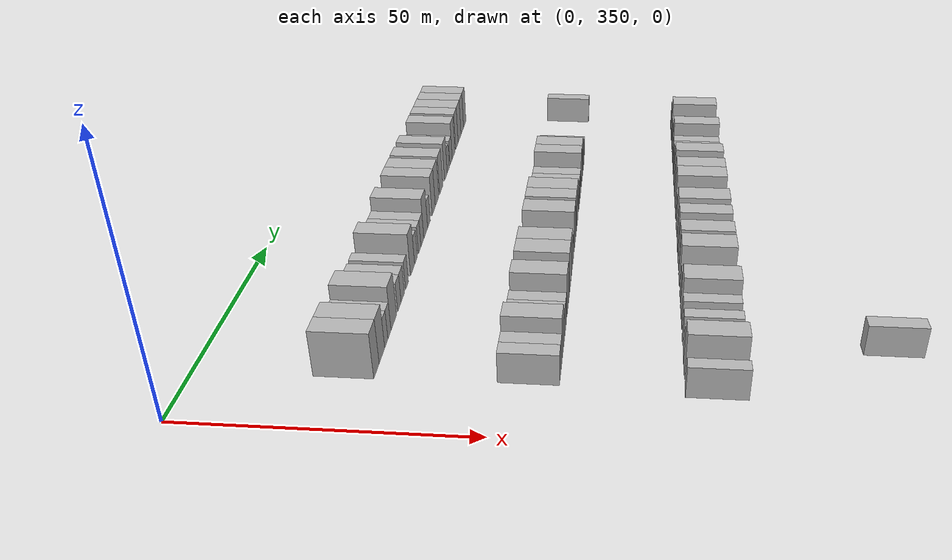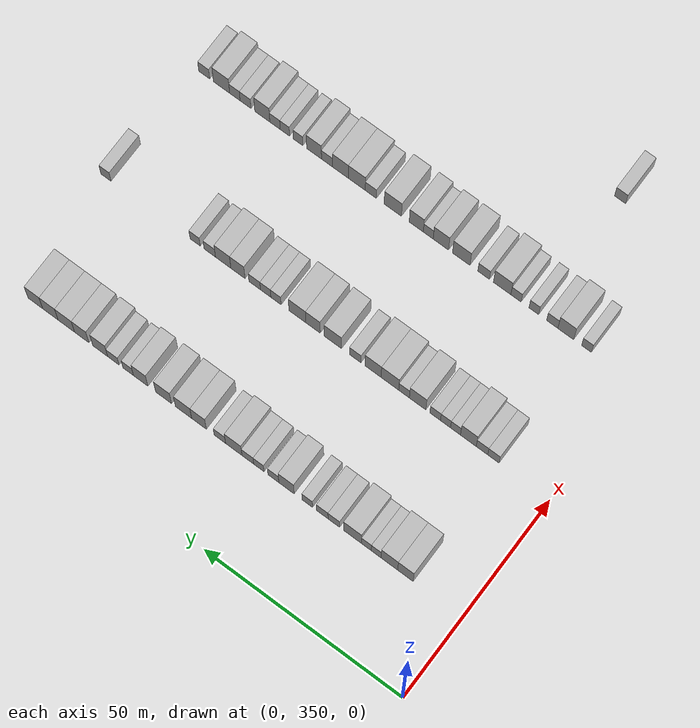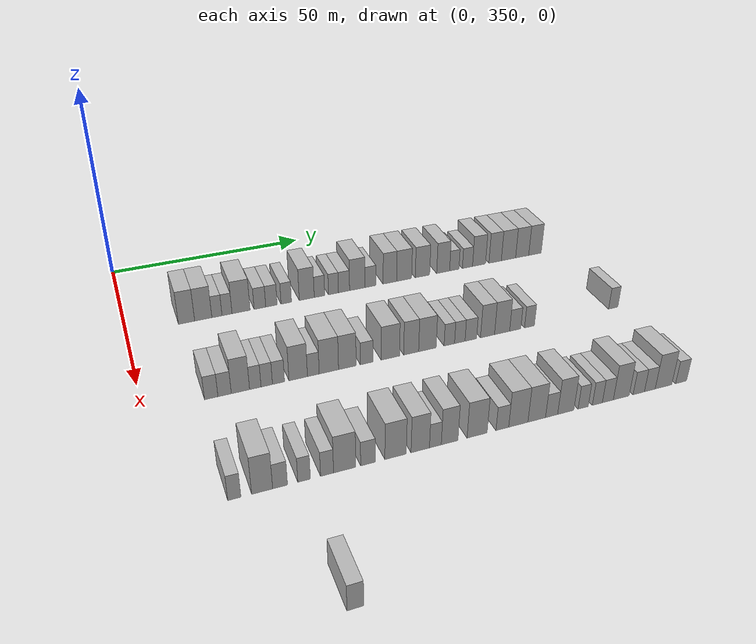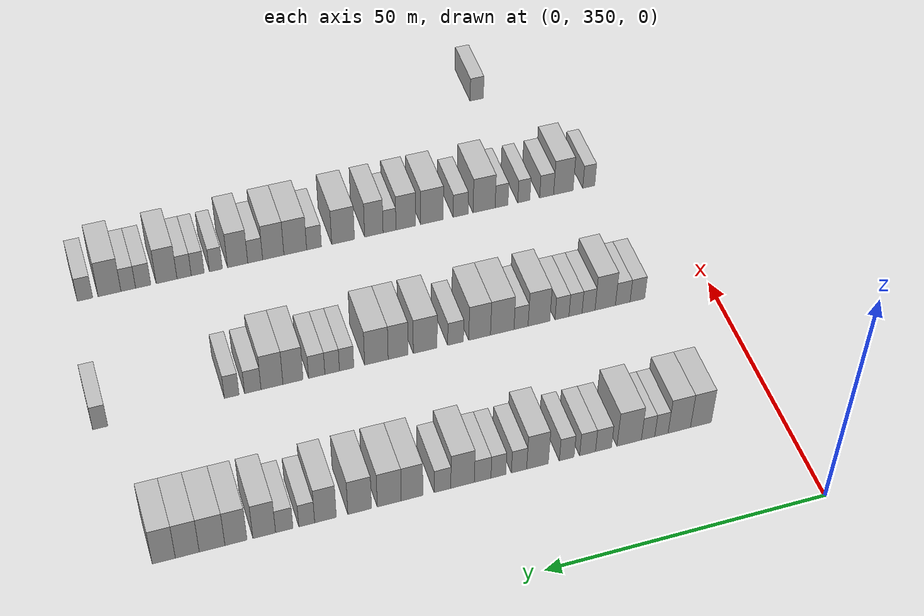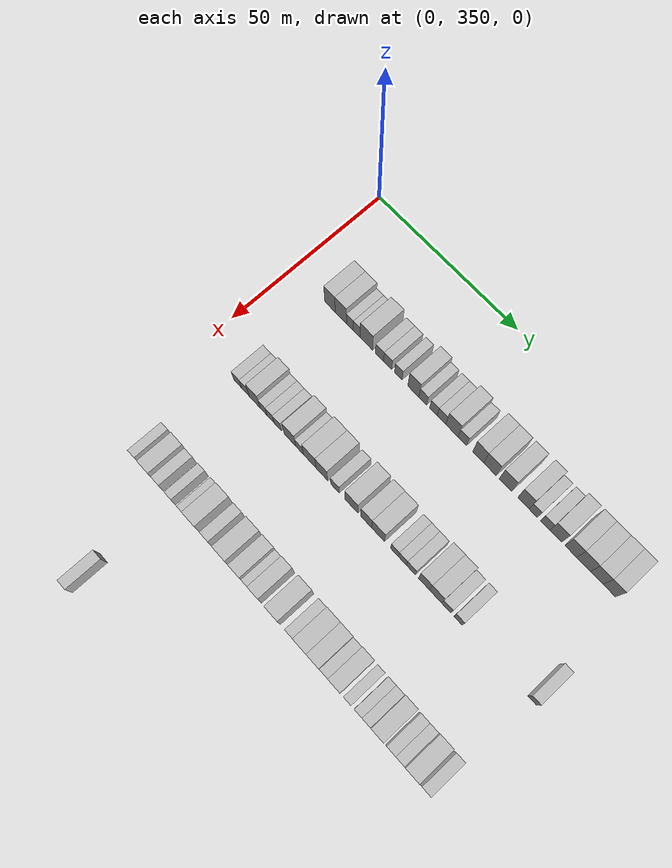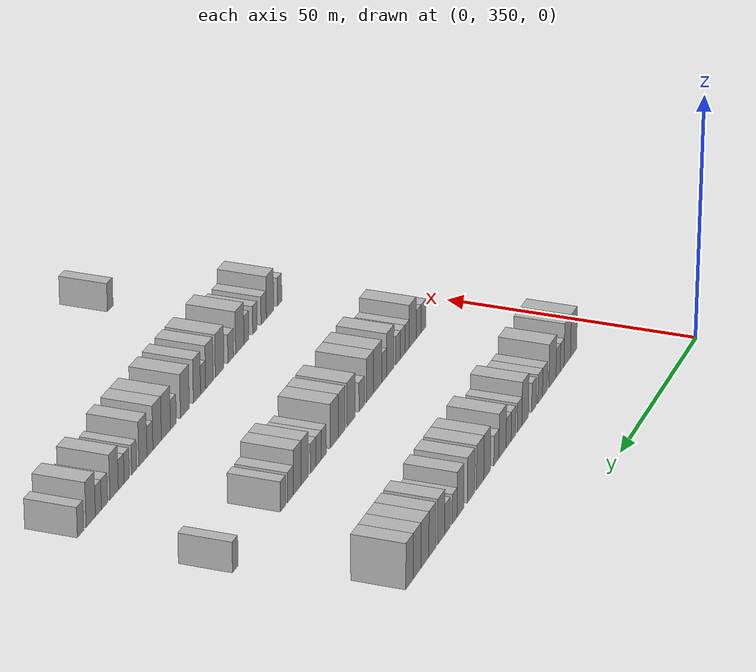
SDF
<sdf version="1.6">
 <world name="default">
  <model name="building_183">
   <static>1</static>
   <pose>25.0000 364.2262 0 0.000000 0.000000 0.000000</pose>
   <link name="link">
    <pose>0 0 4.50 0 0 0</pose>
    <collision name="collision"><geometry><box><size>10.0000 3.8904 9.0000</size></box></geometry></collision>
    <visual name="visual">
     <cast_shadows>0</cast_shadows>
     <geometry><box><size>10.0000 3.8904 9.0000</size></box></geometry>
     <material>
      <script>
       <uri>model://HANNAS_wall/materials/scripts</uri>
       <uri>model://HANNAS_wall/materials/textures</uri>
       <name>vrc/HANNAS_wall</name>
      </script>
     </material>
    </visual>
   </link>
  </model>
  <model name="building_184">
   <static>1</static>
   <pose>25.0000 368.2516 0 0.000000 0.000000 0.000000</pose>
   <link name="link">
    <pose>0 0 4.50 0 0 0</pose>
    <collision name="collision"><geometry><box><size>10.0000 4.1603 9.0000</size></box></geometry></collision>
    <visual name="visual">
     <cast_shadows>0</cast_shadows>
     <geometry><box><size>10.0000 4.1603 9.0000</size></box></geometry>
     <material>
      <script>
       <uri>model://HANNAS_wall/materials/scripts</uri>
       <uri>model://HANNAS_wall/materials/textures</uri>
       <name>vrc/HANNAS_wall</name>
      </script>
     </material>
    </visual>
   </link>
  </model>
  <model name="building_185">
   <static>1</static>
   <pose>25.0000 371.5665 0 0.000000 0.000000 0.000000</pose>
   <link name="link">
    <pose>0 0 3.00 0 0 0</pose>
    <collision name="collision"><geometry><box><size>10.0000 2.4695 6.0000</size></box></geometry></collision>
    <visual name="visual">
     <cast_shadows>0</cast_shadows>
     <geometry><box><size>10.0000 2.4695 6.0000</size></box></geometry>
     <material>
      <script>
       <uri>model://HANNAS_wall/materials/scripts</uri>
       <uri>model://HANNAS_wall/materials/textures</uri>
       <name>vrc/HANNAS_wall</name>
      </script>
     </material>
    </visual>
   </link>
  </model>
  <model name="building_186">
   <static>1</static>
   <pose>25.0000 374.0352 0 0.000000 0.000000 0.000000</pose>
   <link name="link">
    <pose>0 0 3.00 0 0 0</pose>
    <collision name="collision"><geometry><box><size>10.0000 2.4679 6.0000</size></box></geometry></collision>
    <visual name="visual">
     <cast_shadows>0</cast_shadows>
     <geometry><box><size>10.0000 2.4679 6.0000</size></box></geometry>
     <material>
      <script>
       <uri>model://HANNAS_wall/materials/scripts</uri>
       <uri>model://HANNAS_wall/materials/textures</uri>
       <name>vrc/HANNAS_wall</name>
      </script>
     </material>
    </visual>
   </link>
  </model>
  <model name="building_187">
   <static>1</static>
   <pose>25.0000 377.5151 0 0.000000 0.000000 0.000000</pose>
   <link name="link">
    <pose>0 0 4.50 0 0 0</pose>
    <collision name="collision"><geometry><box><size>10.0000 4.4919 9.0000</size></box></geometry></collision>
    <visual name="visual">
     <cast_shadows>0</cast_shadows>
     <geometry><box><size>10.0000 4.4919 9.0000</size></box></geometry>
     <material>
      <script>
       <uri>model://HANNAS_wall/materials/scripts</uri>
       <uri>model://HANNAS_wall/materials/textures</uri>
       <name>vrc/HANNAS_wall</name>
      </script>
     </material>
    </visual>
   </link>
  </model>
  <model name="building_188">
   <static>1</static>
   <pose>25.0000 382.2272 0 0.000000 0.000000 0.000000</pose>
   <link name="link">
    <pose>0 0 3.00 0 0 0</pose>
    <collision name="collision"><geometry><box><size>10.0000 2.9324 6.0000</size></box></geometry></collision>
    <visual name="visual">
     <cast_shadows>0</cast_shadows>
     <geometry><box><size>10.0000 2.9324 6.0000</size></box></geometry>
     <material>
      <script>
       <uri>model://HANNAS_wall/materials/scripts</uri>
       <uri>model://HANNAS_wall/materials/textures</uri>
       <name>vrc/HANNAS_wall</name>
      </script>
     </material>
    </visual>
   </link>
  </model>
  <model name="building_189">
   <static>1</static>
   <pose>25.0000 385.1375 0 0.000000 0.000000 0.000000</pose>
   <link name="link">
    <pose>0 0 3.00 0 0 0</pose>
    <collision name="collision"><geometry><box><size>10.0000 2.8883 6.0000</size></box></geometry></collision>
    <visual name="visual">
     <cast_shadows>0</cast_shadows>
     <geometry><box><size>10.0000 2.8883 6.0000</size></box></geometry>
     <material>
      <script>
       <uri>model://HANNAS_wall/materials/scripts</uri>
       <uri>model://HANNAS_wall/materials/textures</uri>
       <name>vrc/HANNAS_wall</name>
      </script>
     </material>
    </visual>
   </link>
  </model>
  <model name="building_190">
   <static>1</static>
   <pose>25.0000 388.9206 0 0.000000 0.000000 0.000000</pose>
   <link name="link">
    <pose>0 0 3.00 0 0 0</pose>
    <collision name="collision"><geometry><box><size>10.0000 2.6778 6.0000</size></box></geometry></collision>
    <visual name="visual">
     <cast_shadows>0</cast_shadows>
     <geometry><box><size>10.0000 2.6778 6.0000</size></box></geometry>
     <material>
      <script>
       <uri>model://HANNAS_wall/materials/scripts</uri>
       <uri>model://HANNAS_wall/materials/textures</uri>
       <name>vrc/HANNAS_wall</name>
      </script>
     </material>
    </visual>
   </link>
  </model>
  <model name="building_191">
   <static>1</static>
   <pose>25.0000 394.2094 0 0.000000 0.000000 0.000000</pose>
   <link name="link">
    <pose>0 0 4.50 0 0 0</pose>
    <collision name="collision"><geometry><box><size>10.0000 3.8999 9.0000</size></box></geometry></collision>
    <visual name="visual">
     <cast_shadows>0</cast_shadows>
     <geometry><box><size>10.0000 3.8999 9.0000</size></box></geometry>
     <material>
      <script>
       <uri>model://HANNAS_wall/materials/scripts</uri>
       <uri>model://HANNAS_wall/materials/textures</uri>
       <name>vrc/HANNAS_wall</name>
      </script>
     </material>
    </visual>
   </link>
  </model>
  <model name="building_192">
   <static>1</static>
   <pose>25.0000 397.5277 0 0.000000 0.000000 0.000000</pose>
   <link name="link">
    <pose>0 0 3.00 0 0 0</pose>
    <collision name="collision"><geometry><box><size>10.0000 2.7368 6.0000</size></box></geometry></collision>
    <visual name="visual">
     <cast_shadows>0</cast_shadows>
     <geometry><box><size>10.0000 2.7368 6.0000</size></box></geometry>
     <material>
      <script>
       <uri>model://HANNAS_wall/materials/scripts</uri>
       <uri>model://HANNAS_wall/materials/textures</uri>
       <name>vrc/HANNAS_wall</name>
      </script>
     </material>
    </visual>
   </link>
  </model>
  <model name="building_193">
   <static>1</static>
   <pose>25.0000 401.2168 0 0.000000 0.000000 0.000000</pose>
   <link name="link">
    <pose>0 0 3.00 0 0 0</pose>
    <collision name="collision"><geometry><box><size>10.0000 2.6414 6.0000</size></box></geometry></collision>
    <visual name="visual">
     <cast_shadows>0</cast_shadows>
     <geometry><box><size>10.0000 2.6414 6.0000</size></box></geometry>
     <material>
      <script>
       <uri>model://HANNAS_wall/materials/scripts</uri>
       <uri>model://HANNAS_wall/materials/textures</uri>
       <name>vrc/HANNAS_wall</name>
      </script>
     </material>
    </visual>
   </link>
  </model>
  <model name="building_194">
   <static>1</static>
   <pose>25.0000 404.0243 0 0.000000 0.000000 0.000000</pose>
   <link name="link">
    <pose>0 0 3.00 0 0 0</pose>
    <collision name="collision"><geometry><box><size>10.0000 2.9736 6.0000</size></box></geometry></collision>
    <visual name="visual">
     <cast_shadows>0</cast_shadows>
     <geometry><box><size>10.0000 2.9736 6.0000</size></box></geometry>
     <material>
      <script>
       <uri>model://HANNAS_wall/materials/scripts</uri>
       <uri>model://HANNAS_wall/materials/textures</uri>
       <name>vrc/HANNAS_wall</name>
      </script>
     </material>
    </visual>
   </link>
  </model>
  <model name="building_195">
   <static>1</static>
   <pose>25.0000 407.5919 0 0.000000 0.000000 0.000000</pose>
   <link name="link">
    <pose>0 0 4.50 0 0 0</pose>
    <collision name="collision"><geometry><box><size>10.0000 4.1615 9.0000</size></box></geometry></collision>
    <visual name="visual">
     <cast_shadows>0</cast_shadows>
     <geometry><box><size>10.0000 4.1615 9.0000</size></box></geometry>
     <material>
      <script>
       <uri>model://HANNAS_wall/materials/scripts</uri>
       <uri>model://HANNAS_wall/materials/textures</uri>
       <name>vrc/HANNAS_wall</name>
      </script>
     </material>
    </visual>
   </link>
  </model>
  <model name="building_196">
   <static>1</static>
   <pose>25.0000 411.1399 0 0.000000 0.000000 0.000000</pose>
   <link name="link">
    <pose>0 0 3.00 0 0 0</pose>
    <collision name="collision"><geometry><box><size>10.0000 2.9345 6.0000</size></box></geometry></collision>
    <visual name="visual">
     <cast_shadows>0</cast_shadows>
     <geometry><box><size>10.0000 2.9345 6.0000</size></box></geometry>
     <material>
      <script>
       <uri>model://HANNAS_wall/materials/scripts</uri>
       <uri>model://HANNAS_wall/materials/textures</uri>
       <name>vrc/HANNAS_wall</name>
      </script>
     </material>
    </visual>
   </link>
  </model>
  <model name="building_197">
   <static>1</static>
   <pose>25.0000 416.4873 0 0.000000 0.000000 0.000000</pose>
   <link name="link">
    <pose>0 0 4.50 0 0 0</pose>
    <collision name="collision"><geometry><box><size>10.0000 3.7602 9.0000</size></box></geometry></collision>
    <visual name="visual">
     <cast_shadows>0</cast_shadows>
     <geometry><box><size>10.0000 3.7602 9.0000</size></box></geometry>
     <material>
      <script>
       <uri>model://HANNAS_wall/materials/scripts</uri>
       <uri>model://HANNAS_wall/materials/textures</uri>
       <name>vrc/HANNAS_wall</name>
      </script>
     </material>
    </visual>
   </link>
  </model>
  <model name="building_198">
   <static>1</static>
   <pose>25.0000 420.4579 0 0.000000 0.000000 0.000000</pose>
   <link name="link">
    <pose>0 0 4.50 0 0 0</pose>
    <collision name="collision"><geometry><box><size>10.0000 4.1810 9.0000</size></box></geometry></collision>
    <visual name="visual">
     <cast_shadows>0</cast_shadows>
     <geometry><box><size>10.0000 4.1810 9.0000</size></box></geometry>
     <material>
      <script>
       <uri>model://HANNAS_wall/materials/scripts</uri>
       <uri>model://HANNAS_wall/materials/textures</uri>
       <name>vrc/HANNAS_wall</name>
      </script>
     </material>
    </visual>
   </link>
  </model>
  <model name="building_199">
   <static>1</static>
   <pose>25.0000 425.5922 0 0.000000 0.000000 0.000000</pose>
   <link name="link">
    <pose>0 0 4.50 0 0 0</pose>
    <collision name="collision"><geometry><box><size>10.0000 4.0876 9.0000</size></box></geometry></collision>
    <visual name="visual">
     <cast_shadows>0</cast_shadows>
     <geometry><box><size>10.0000 4.0876 9.0000</size></box></geometry>
     <material>
      <script>
       <uri>model://HANNAS_wall/materials/scripts</uri>
       <uri>model://HANNAS_wall/materials/textures</uri>
       <name>vrc/HANNAS_wall</name>
      </script>
     </material>
    </visual>
   </link>
  </model>
  <model name="building_200">
   <static>1</static>
   <pose>25.0000 431.4928 0 0.000000 0.000000 0.000000</pose>
   <link name="link">
    <pose>0 0 4.50 0 0 0</pose>
    <collision name="collision"><geometry><box><size>10.0000 3.7136 9.0000</size></box></geometry></collision>
    <visual name="visual">
     <cast_shadows>0</cast_shadows>
     <geometry><box><size>10.0000 3.7136 9.0000</size></box></geometry>
     <material>
      <script>
       <uri>model://HANNAS_wall/materials/scripts</uri>
       <uri>model://HANNAS_wall/materials/textures</uri>
       <name>vrc/HANNAS_wall</name>
      </script>
     </material>
    </visual>
   </link>
  </model>
  <model name="building_201">
   <static>1</static>
   <pose>25.0000 434.7051 0 0.000000 0.000000 0.000000</pose>
   <link name="link">
    <pose>0 0 3.00 0 0 0</pose>
    <collision name="collision"><geometry><box><size>10.0000 2.7110 6.0000</size></box></geometry></collision>
    <visual name="visual">
     <cast_shadows>0</cast_shadows>
     <geometry><box><size>10.0000 2.7110 6.0000</size></box></geometry>
     <material>
      <script>
       <uri>model://HANNAS_wall/materials/scripts</uri>
       <uri>model://HANNAS_wall/materials/textures</uri>
       <name>vrc/HANNAS_wall</name>
      </script>
     </material>
    </visual>
   </link>
  </model>
  <model name="building_202">
   <static>1</static>
   <pose>25.0000 438.5434 0 0.000000 0.000000 0.000000</pose>
   <link name="link">
    <pose>0 0 3.00 0 0 0</pose>
    <collision name="collision"><geometry><box><size>10.0000 2.9657 6.0000</size></box></geometry></collision>
    <visual name="visual">
     <cast_shadows>0</cast_shadows>
     <geometry><box><size>10.0000 2.9657 6.0000</size></box></geometry>
     <material>
      <script>
       <uri>model://HANNAS_wall/materials/scripts</uri>
       <uri>model://HANNAS_wall/materials/textures</uri>
       <name>vrc/HANNAS_wall</name>
      </script>
     </material>
    </visual>
   </link>
  </model>
  <model name="building_203">
   <static>1</static>
   <pose>25.0000 441.9477 0 0.000000 0.000000 0.000000</pose>
   <link name="link">
    <pose>0 0 4.50 0 0 0</pose>
    <collision name="collision"><geometry><box><size>10.0000 3.8429 9.0000</size></box></geometry></collision>
    <visual name="visual">
     <cast_shadows>0</cast_shadows>
     <geometry><box><size>10.0000 3.8429 9.0000</size></box></geometry>
     <material>
      <script>
       <uri>model://HANNAS_wall/materials/scripts</uri>
       <uri>model://HANNAS_wall/materials/textures</uri>
       <name>vrc/HANNAS_wall</name>
      </script>
     </material>
    </visual>
   </link>
  </model>
  <model name="building_204">
   <static>1</static>
   <pose>25.0000 446.7280 0 0.000000 0.000000 0.000000</pose>
   <link name="link">
    <pose>0 0 4.50 0 0 0</pose>
    <collision name="collision"><geometry><box><size>10.0000 3.7176 9.0000</size></box></geometry></collision>
    <visual name="visual">
     <cast_shadows>0</cast_shadows>
     <geometry><box><size>10.0000 3.7176 9.0000</size></box></geometry>
     <material>
      <script>
       <uri>model://HANNAS_wall/materials/scripts</uri>
       <uri>model://HANNAS_wall/materials/textures</uri>
       <name>vrc/HANNAS_wall</name>
      </script>
     </material>
    </visual>
   </link>
  </model>
  <model name="building_205">
   <static>1</static>
   <pose>25.0000 450.7394 0 0.000000 0.000000 0.000000</pose>
   <link name="link">
    <pose>0 0 4.50 0 0 0</pose>
    <collision name="collision"><geometry><box><size>10.0000 4.3052 9.0000</size></box></geometry></collision>
    <visual name="visual">
     <cast_shadows>0</cast_shadows>
     <geometry><box><size>10.0000 4.3052 9.0000</size></box></geometry>
     <material>
      <script>
       <uri>model://HANNAS_wall/materials/scripts</uri>
       <uri>model://HANNAS_wall/materials/textures</uri>
       <name>vrc/HANNAS_wall</name>
      </script>
     </material>
    </visual>
   </link>
  </model>
  <model name="building_206">
   <static>1</static>
   <pose>25.0000 454.8873 0 0.000000 0.000000 0.000000</pose>
   <link name="link">
    <pose>0 0 4.50 0 0 0</pose>
    <collision name="collision"><geometry><box><size>10.0000 3.9905 9.0000</size></box></geometry></collision>
    <visual name="visual">
     <cast_shadows>0</cast_shadows>
     <geometry><box><size>10.0000 3.9905 9.0000</size></box></geometry>
     <material>
      <script>
       <uri>model://HANNAS_wall/materials/scripts</uri>
       <uri>model://HANNAS_wall/materials/textures</uri>
       <name>vrc/HANNAS_wall</name>
      </script>
     </material>
    </visual>
   </link>
  </model>
  <model name="building_207">
   <static>1</static>
   <pose>25.0000 458.8040 0 0.000000 0.000000 0.000000</pose>
   <link name="link">
    <pose>0 0 4.50 0 0 0</pose>
    <collision name="collision"><geometry><box><size>10.0000 3.8428 9.0000</size></box></geometry></collision>
    <visual name="visual">
     <cast_shadows>0</cast_shadows>
     <geometry><box><size>10.0000 3.8428 9.0000</size></box></geometry>
     <material>
      <script>
       <uri>model://HANNAS_wall/materials/scripts</uri>
       <uri>model://HANNAS_wall/materials/textures</uri>
       <name>vrc/HANNAS_wall</name>
      </script>
     </material>
    </visual>
   </link>
  </model>
  <model name="building_411">
   <static>1</static>
   <pose>55.0000 364.2267 0 0.000000 0.000000 0.000000</pose>
   <link name="link">
    <pose>0 0 3.00 0 0 0</pose>
    <collision name="collision"><geometry><box><size>10.0000 2.8691 6.0000</size></box></geometry></collision>
    <visual name="visual">
     <cast_shadows>0</cast_shadows>
     <geometry><box><size>10.0000 2.8691 6.0000</size></box></geometry>
     <material>
      <script>
       <uri>model://HANNAS_wall/materials/scripts</uri>
       <uri>model://HANNAS_wall/materials/textures</uri>
       <name>vrc/HANNAS_wall</name>
      </script>
     </material>
    </visual>
   </link>
  </model>
  <model name="building_412">
   <static>1</static>
   <pose>55.0000 367.0992 0 0.000000 0.000000 0.000000</pose>
   <link name="link">
    <pose>0 0 3.00 0 0 0</pose>
    <collision name="collision"><geometry><box><size>10.0000 2.8759 6.0000</size></box></geometry></collision>
    <visual name="visual">
     <cast_shadows>0</cast_shadows>
     <geometry><box><size>10.0000 2.8759 6.0000</size></box></geometry>
     <material>
      <script>
       <uri>model://HANNAS_wall/materials/scripts</uri>
       <uri>model://HANNAS_wall/materials/textures</uri>
       <name>vrc/HANNAS_wall</name>
      </script>
     </material>
    </visual>
   </link>
  </model>
  <model name="building_413">
   <static>1</static>
   <pose>55.0000 370.5281 0 0.000000 0.000000 0.000000</pose>
   <link name="link">
    <pose>0 0 4.50 0 0 0</pose>
    <collision name="collision"><geometry><box><size>10.0000 3.9819 9.0000</size></box></geometry></collision>
    <visual name="visual">
     <cast_shadows>0</cast_shadows>
     <geometry><box><size>10.0000 3.9819 9.0000</size></box></geometry>
     <material>
      <script>
       <uri>model://HANNAS_wall/materials/scripts</uri>
       <uri>model://HANNAS_wall/materials/textures</uri>
       <name>vrc/HANNAS_wall</name>
      </script>
     </material>
    </visual>
   </link>
  </model>
  <model name="building_414">
   <static>1</static>
   <pose>55.0000 373.7792 0 0.000000 0.000000 0.000000</pose>
   <link name="link">
    <pose>0 0 3.00 0 0 0</pose>
    <collision name="collision"><geometry><box><size>10.0000 2.5201 6.0000</size></box></geometry></collision>
    <visual name="visual">
     <cast_shadows>0</cast_shadows>
     <geometry><box><size>10.0000 2.5201 6.0000</size></box></geometry>
     <material>
      <script>
       <uri>model://HANNAS_wall/materials/scripts</uri>
       <uri>model://HANNAS_wall/materials/textures</uri>
       <name>vrc/HANNAS_wall</name>
      </script>
     </material>
    </visual>
   </link>
  </model>
  <model name="building_415">
   <static>1</static>
   <pose>55.0000 376.3040 0 0.000000 0.000000 0.000000</pose>
   <link name="link">
    <pose>0 0 3.00 0 0 0</pose>
    <collision name="collision"><geometry><box><size>10.0000 2.5296 6.0000</size></box></geometry></collision>
    <visual name="visual">
     <cast_shadows>0</cast_shadows>
     <geometry><box><size>10.0000 2.5296 6.0000</size></box></geometry>
     <material>
      <script>
       <uri>model://HANNAS_wall/materials/scripts</uri>
       <uri>model://HANNAS_wall/materials/textures</uri>
       <name>vrc/HANNAS_wall</name>
      </script>
     </material>
    </visual>
   </link>
  </model>
  <model name="building_416">
   <static>1</static>
   <pose>55.0000 378.9196 0 0.000000 0.000000 0.000000</pose>
   <link name="link">
    <pose>0 0 3.00 0 0 0</pose>
    <collision name="collision"><geometry><box><size>10.0000 2.7015 6.0000</size></box></geometry></collision>
    <visual name="visual">
     <cast_shadows>0</cast_shadows>
     <geometry><box><size>10.0000 2.7015 6.0000</size></box></geometry>
     <material>
      <script>
       <uri>model://HANNAS_wall/materials/scripts</uri>
       <uri>model://HANNAS_wall/materials/textures</uri>
       <name>vrc/HANNAS_wall</name>
      </script>
     </material>
    </visual>
   </link>
  </model>
  <model name="building_417">
   <static>1</static>
   <pose>55.0000 383.3607 0 0.000000 0.000000 0.000000</pose>
   <link name="link">
    <pose>0 0 4.50 0 0 0</pose>
    <collision name="collision"><geometry><box><size>10.0000 4.1807 9.0000</size></box></geometry></collision>
    <visual name="visual">
     <cast_shadows>0</cast_shadows>
     <geometry><box><size>10.0000 4.1807 9.0000</size></box></geometry>
     <material>
      <script>
       <uri>model://HANNAS_wall/materials/scripts</uri>
       <uri>model://HANNAS_wall/materials/textures</uri>
       <name>vrc/HANNAS_wall</name>
      </script>
     </material>
    </visual>
   </link>
  </model>
  <model name="building_418">
   <static>1</static>
   <pose>55.0000 386.8010 0 0.000000 0.000000 0.000000</pose>
   <link name="link">
    <pose>0 0 3.00 0 0 0</pose>
    <collision name="collision"><geometry><box><size>10.0000 2.6998 6.0000</size></box></geometry></collision>
    <visual name="visual">
     <cast_shadows>0</cast_shadows>
     <geometry><box><size>10.0000 2.6998 6.0000</size></box></geometry>
     <material>
      <script>
       <uri>model://HANNAS_wall/materials/scripts</uri>
       <uri>model://HANNAS_wall/materials/textures</uri>
       <name>vrc/HANNAS_wall</name>
      </script>
     </material>
    </visual>
   </link>
  </model>
  <model name="building_419">
   <static>1</static>
   <pose>55.0000 390.3885 0 0.000000 0.000000 0.000000</pose>
   <link name="link">
    <pose>0 0 4.50 0 0 0</pose>
    <collision name="collision"><geometry><box><size>10.0000 4.4751 9.0000</size></box></geometry></collision>
    <visual name="visual">
     <cast_shadows>0</cast_shadows>
     <geometry><box><size>10.0000 4.4751 9.0000</size></box></geometry>
     <material>
      <script>
       <uri>model://HANNAS_wall/materials/scripts</uri>
       <uri>model://HANNAS_wall/materials/textures</uri>
       <name>vrc/HANNAS_wall</name>
      </script>
     </material>
    </visual>
   </link>
  </model>
  <model name="building_420">
   <static>1</static>
   <pose>55.0000 394.6880 0 0.000000 0.000000 0.000000</pose>
   <link name="link">
    <pose>0 0 4.50 0 0 0</pose>
    <collision name="collision"><geometry><box><size>10.0000 4.1240 9.0000</size></box></geometry></collision>
    <visual name="visual">
     <cast_shadows>0</cast_shadows>
     <geometry><box><size>10.0000 4.1240 9.0000</size></box></geometry>
     <material>
      <script>
       <uri>model://HANNAS_wall/materials/scripts</uri>
       <uri>model://HANNAS_wall/materials/textures</uri>
       <name>vrc/HANNAS_wall</name>
      </script>
     </material>
    </visual>
   </link>
  </model>
  <model name="building_421">
   <static>1</static>
   <pose>55.0000 399.2357 0 0.000000 0.000000 0.000000</pose>
   <link name="link">
    <pose>0 0 3.00 0 0 0</pose>
    <collision name="collision"><geometry><box><size>10.0000 2.9714 6.0000</size></box></geometry></collision>
    <visual name="visual">
     <cast_shadows>0</cast_shadows>
     <geometry><box><size>10.0000 2.9714 6.0000</size></box></geometry>
     <material>
      <script>
       <uri>model://HANNAS_wall/materials/scripts</uri>
       <uri>model://HANNAS_wall/materials/textures</uri>
       <name>vrc/HANNAS_wall</name>
      </script>
     </material>
    </visual>
   </link>
  </model>
  <model name="building_422">
   <static>1</static>
   <pose>55.0000 404.9467 0 0.000000 0.000000 0.000000</pose>
   <link name="link">
    <pose>0 0 4.50 0 0 0</pose>
    <collision name="collision"><geometry><box><size>10.0000 4.4506 9.0000</size></box></geometry></collision>
    <visual name="visual">
     <cast_shadows>0</cast_shadows>
     <geometry><box><size>10.0000 4.4506 9.0000</size></box></geometry>
     <material>
      <script>
       <uri>model://HANNAS_wall/materials/scripts</uri>
       <uri>model://HANNAS_wall/materials/textures</uri>
       <name>vrc/HANNAS_wall</name>
      </script>
     </material>
    </visual>
   </link>
  </model>
  <model name="building_423">
   <static>1</static>
   <pose>55.0000 410.0169 0 0.000000 0.000000 0.000000</pose>
   <link name="link">
    <pose>0 0 4.50 0 0 0</pose>
    <collision name="collision"><geometry><box><size>10.0000 3.6897 9.0000</size></box></geometry></collision>
    <visual name="visual">
     <cast_shadows>0</cast_shadows>
     <geometry><box><size>10.0000 3.6897 9.0000</size></box></geometry>
     <material>
      <script>
       <uri>model://HANNAS_wall/materials/scripts</uri>
       <uri>model://HANNAS_wall/materials/textures</uri>
       <name>vrc/HANNAS_wall</name>
      </script>
     </material>
    </visual>
   </link>
  </model>
  <model name="building_424">
   <static>1</static>
   <pose>55.0000 414.0390 0 0.000000 0.000000 0.000000</pose>
   <link name="link">
    <pose>0 0 4.50 0 0 0</pose>
    <collision name="collision"><geometry><box><size>10.0000 4.3545 9.0000</size></box></geometry></collision>
    <visual name="visual">
     <cast_shadows>0</cast_shadows>
     <geometry><box><size>10.0000 4.3545 9.0000</size></box></geometry>
     <material>
      <script>
       <uri>model://HANNAS_wall/materials/scripts</uri>
       <uri>model://HANNAS_wall/materials/textures</uri>
       <name>vrc/HANNAS_wall</name>
      </script>
     </material>
    </visual>
   </link>
  </model>
  <model name="building_425">
   <static>1</static>
   <pose>55.0000 419.5422 0 0.000000 0.000000 0.000000</pose>
   <link name="link">
    <pose>0 0 3.00 0 0 0</pose>
    <collision name="collision"><geometry><box><size>10.0000 2.6517 6.0000</size></box></geometry></collision>
    <visual name="visual">
     <cast_shadows>0</cast_shadows>
     <geometry><box><size>10.0000 2.6517 6.0000</size></box></geometry>
     <material>
      <script>
       <uri>model://HANNAS_wall/materials/scripts</uri>
       <uri>model://HANNAS_wall/materials/textures</uri>
       <name>vrc/HANNAS_wall</name>
      </script>
     </material>
    </visual>
   </link>
  </model>
  <model name="building_426">
   <static>1</static>
   <pose>55.0000 422.2078 0 0.000000 0.000000 0.000000</pose>
   <link name="link">
    <pose>0 0 3.00 0 0 0</pose>
    <collision name="collision"><geometry><box><size>10.0000 2.6796 6.0000</size></box></geometry></collision>
    <visual name="visual">
     <cast_shadows>0</cast_shadows>
     <geometry><box><size>10.0000 2.6796 6.0000</size></box></geometry>
     <material>
      <script>
       <uri>model://HANNAS_wall/materials/scripts</uri>
       <uri>model://HANNAS_wall/materials/textures</uri>
       <name>vrc/HANNAS_wall</name>
      </script>
     </material>
    </visual>
   </link>
  </model>
  <model name="building_427">
   <static>1</static>
   <pose>55.0000 425.0359 0 0.000000 0.000000 0.000000</pose>
   <link name="link">
    <pose>0 0 3.00 0 0 0</pose>
    <collision name="collision"><geometry><box><size>10.0000 2.9766 6.0000</size></box></geometry></collision>
    <visual name="visual">
     <cast_shadows>0</cast_shadows>
     <geometry><box><size>10.0000 2.9766 6.0000</size></box></geometry>
     <material>
      <script>
       <uri>model://HANNAS_wall/materials/scripts</uri>
       <uri>model://HANNAS_wall/materials/textures</uri>
       <name>vrc/HANNAS_wall</name>
      </script>
     </material>
    </visual>
   </link>
  </model>
  <model name="building_428">
   <static>1</static>
   <pose>55.0000 429.3567 0 0.000000 0.000000 0.000000</pose>
   <link name="link">
    <pose>0 0 4.50 0 0 0</pose>
    <collision name="collision"><geometry><box><size>10.0000 3.6650 9.0000</size></box></geometry></collision>
    <visual name="visual">
     <cast_shadows>0</cast_shadows>
     <geometry><box><size>10.0000 3.6650 9.0000</size></box></geometry>
     <material>
      <script>
       <uri>model://HANNAS_wall/materials/scripts</uri>
       <uri>model://HANNAS_wall/materials/textures</uri>
       <name>vrc/HANNAS_wall</name>
      </script>
     </material>
    </visual>
   </link>
  </model>
  <model name="building_429">
   <static>1</static>
   <pose>55.0000 433.1728 0 0.000000 0.000000 0.000000</pose>
   <link name="link">
    <pose>0 0 4.50 0 0 0</pose>
    <collision name="collision"><geometry><box><size>10.0000 3.9673 9.0000</size></box></geometry></collision>
    <visual name="visual">
     <cast_shadows>0</cast_shadows>
     <geometry><box><size>10.0000 3.9673 9.0000</size></box></geometry>
     <material>
      <script>
       <uri>model://HANNAS_wall/materials/scripts</uri>
       <uri>model://HANNAS_wall/materials/textures</uri>
       <name>vrc/HANNAS_wall</name>
      </script>
     </material>
    </visual>
   </link>
  </model>
  <model name="building_430">
   <static>1</static>
   <pose>55.0000 436.6396 0 0.000000 0.000000 0.000000</pose>
   <link name="link">
    <pose>0 0 3.00 0 0 0</pose>
    <collision name="collision"><geometry><box><size>10.0000 2.9663 6.0000</size></box></geometry></collision>
    <visual name="visual">
     <cast_shadows>0</cast_shadows>
     <geometry><box><size>10.0000 2.9663 6.0000</size></box></geometry>
     <material>
      <script>
       <uri>model://HANNAS_wall/materials/scripts</uri>
       <uri>model://HANNAS_wall/materials/textures</uri>
       <name>vrc/HANNAS_wall</name>
      </script>
     </material>
    </visual>
   </link>
  </model>
  <model name="building_431">
   <static>1</static>
   <pose>55.0000 440.4459 0 0.000000 0.000000 0.000000</pose>
   <link name="link">
    <pose>0 0 3.00 0 0 0</pose>
    <collision name="collision"><geometry><box><size>10.0000 2.6462 6.0000</size></box></geometry></collision>
    <visual name="visual">
     <cast_shadows>0</cast_shadows>
     <geometry><box><size>10.0000 2.6462 6.0000</size></box></geometry>
     <material>
      <script>
       <uri>model://HANNAS_wall/materials/scripts</uri>
       <uri>model://HANNAS_wall/materials/textures</uri>
       <name>vrc/HANNAS_wall</name>
      </script>
     </material>
    </visual>
   </link>
  </model>
  <model name="building_432">
   <static>1</static>
   <pose>55.0000 463.7493 0 0.000000 0.000000 0.000000</pose>
   <link name="link">
    <pose>0 0 3.00 0 0 0</pose>
    <collision name="collision"><geometry><box><size>10.0000 2.6536 6.0000</size></box></geometry></collision>
    <visual name="visual">
     <cast_shadows>0</cast_shadows>
     <geometry><box><size>10.0000 2.6536 6.0000</size></box></geometry>
     <material>
      <script>
       <uri>model://HANNAS_wall/materials/scripts</uri>
       <uri>model://HANNAS_wall/materials/textures</uri>
       <name>vrc/HANNAS_wall</name>
      </script>
     </material>
    </visual>
   </link>
  </model>
  <model name="building_624">
   <static>1</static>
   <pose>85.0000 362.5491 0 0.000000 0.000000 0.000000</pose>
   <link name="link">
    <pose>0 0 3.00 0 0 0</pose>
    <collision name="collision"><geometry><box><size>10.0000 2.4716 6.0000</size></box></geometry></collision>
    <visual name="visual">
     <cast_shadows>0</cast_shadows>
     <geometry><box><size>10.0000 2.4716 6.0000</size></box></geometry>
     <material>
      <script>
       <uri>model://HANNAS_wall/materials/scripts</uri>
       <uri>model://HANNAS_wall/materials/textures</uri>
       <name>vrc/HANNAS_wall</name>
      </script>
     </material>
    </visual>
   </link>
  </model>
  <model name="building_625">
   <static>1</static>
   <pose>85.0000 367.7833 0 0.000000 0.000000 0.000000</pose>
   <link name="link">
    <pose>0 0 4.50 0 0 0</pose>
    <collision name="collision"><geometry><box><size>10.0000 3.9968 9.0000</size></box></geometry></collision>
    <visual name="visual">
     <cast_shadows>0</cast_shadows>
     <geometry><box><size>10.0000 3.9968 9.0000</size></box></geometry>
     <material>
      <script>
       <uri>model://HANNAS_wall/materials/scripts</uri>
       <uri>model://HANNAS_wall/materials/textures</uri>
       <name>vrc/HANNAS_wall</name>
      </script>
     </material>
    </visual>
   </link>
  </model>
  <model name="building_626">
   <static>1</static>
   <pose>85.0000 371.2113 0 0.000000 0.000000 0.000000</pose>
   <link name="link">
    <pose>0 0 3.00 0 0 0</pose>
    <collision name="collision"><geometry><box><size>10.0000 2.8593 6.0000</size></box></geometry></collision>
    <visual name="visual">
     <cast_shadows>0</cast_shadows>
     <geometry><box><size>10.0000 2.8593 6.0000</size></box></geometry>
     <material>
      <script>
       <uri>model://HANNAS_wall/materials/scripts</uri>
       <uri>model://HANNAS_wall/materials/textures</uri>
       <name>vrc/HANNAS_wall</name>
      </script>
     </material>
    </visual>
   </link>
  </model>
  <model name="building_627">
   <static>1</static>
   <pose>85.0000 375.8689 0 0.000000 0.000000 0.000000</pose>
   <link name="link">
    <pose>0 0 3.00 0 0 0</pose>
    <collision name="collision"><geometry><box><size>10.0000 2.4560 6.0000</size></box></geometry></collision>
    <visual name="visual">
     <cast_shadows>0</cast_shadows>
     <geometry><box><size>10.0000 2.4560 6.0000</size></box></geometry>
     <material>
      <script>
       <uri>model://HANNAS_wall/materials/scripts</uri>
       <uri>model://HANNAS_wall/materials/textures</uri>
       <name>vrc/HANNAS_wall</name>
      </script>
     </material>
    </visual>
   </link>
  </model>
  <model name="building_628">
   <static>1</static>
   <pose>85.0000 380.3938 0 0.000000 0.000000 0.000000</pose>
   <link name="link">
    <pose>0 0 3.00 0 0 0</pose>
    <collision name="collision"><geometry><box><size>10.0000 2.5937 6.0000</size></box></geometry></collision>
    <visual name="visual">
     <cast_shadows>0</cast_shadows>
     <geometry><box><size>10.0000 2.5937 6.0000</size></box></geometry>
     <material>
      <script>
       <uri>model://HANNAS_wall/materials/scripts</uri>
       <uri>model://HANNAS_wall/materials/textures</uri>
       <name>vrc/HANNAS_wall</name>
      </script>
     </material>
    </visual>
   </link>
  </model>
  <model name="building_629">
   <static>1</static>
   <pose>85.0000 383.9198 0 0.000000 0.000000 0.000000</pose>
   <link name="link">
    <pose>0 0 4.50 0 0 0</pose>
    <collision name="collision"><geometry><box><size>10.0000 4.4585 9.0000</size></box></geometry></collision>
    <visual name="visual">
     <cast_shadows>0</cast_shadows>
     <geometry><box><size>10.0000 4.4585 9.0000</size></box></geometry>
     <material>
      <script>
       <uri>model://HANNAS_wall/materials/scripts</uri>
       <uri>model://HANNAS_wall/materials/textures</uri>
       <name>vrc/HANNAS_wall</name>
      </script>
     </material>
    </visual>
   </link>
  </model>
  <model name="building_630">
   <static>1</static>
   <pose>85.0000 388.6383 0 0.000000 0.000000 0.000000</pose>
   <link name="link">
    <pose>0 0 3.00 0 0 0</pose>
    <collision name="collision"><geometry><box><size>10.0000 2.9785 6.0000</size></box></geometry></collision>
    <visual name="visual">
     <cast_shadows>0</cast_shadows>
     <geometry><box><size>10.0000 2.9785 6.0000</size></box></geometry>
     <material>
      <script>
       <uri>model://HANNAS_wall/materials/scripts</uri>
       <uri>model://HANNAS_wall/materials/textures</uri>
       <name>vrc/HANNAS_wall</name>
      </script>
     </material>
    </visual>
   </link>
  </model>
  <model name="building_631">
   <static>1</static>
   <pose>85.0000 394.3651 0 0.000000 0.000000 0.000000</pose>
   <link name="link">
    <pose>0 0 4.50 0 0 0</pose>
    <collision name="collision"><geometry><box><size>10.0000 4.4749 9.0000</size></box></geometry></collision>
    <visual name="visual">
     <cast_shadows>0</cast_shadows>
     <geometry><box><size>10.0000 4.4749 9.0000</size></box></geometry>
     <material>
      <script>
       <uri>model://HANNAS_wall/materials/scripts</uri>
       <uri>model://HANNAS_wall/materials/textures</uri>
       <name>vrc/HANNAS_wall</name>
      </script>
     </material>
    </visual>
   </link>
  </model>
  <model name="building_632">
   <static>1</static>
   <pose>85.0000 399.5650 0 0.000000 0.000000 0.000000</pose>
   <link name="link">
    <pose>0 0 4.50 0 0 0</pose>
    <collision name="collision"><geometry><box><size>10.0000 3.9248 9.0000</size></box></geometry></collision>
    <visual name="visual">
     <cast_shadows>0</cast_shadows>
     <geometry><box><size>10.0000 3.9248 9.0000</size></box></geometry>
     <material>
      <script>
       <uri>model://HANNAS_wall/materials/scripts</uri>
       <uri>model://HANNAS_wall/materials/textures</uri>
       <name>vrc/HANNAS_wall</name>
      </script>
     </material>
    </visual>
   </link>
  </model>
  <model name="building_633">
   <static>1</static>
   <pose>85.0000 402.7975 0 0.000000 0.000000 0.000000</pose>
   <link name="link">
    <pose>0 0 3.00 0 0 0</pose>
    <collision name="collision"><geometry><box><size>10.0000 2.5402 6.0000</size></box></geometry></collision>
    <visual name="visual">
     <cast_shadows>0</cast_shadows>
     <geometry><box><size>10.0000 2.5402 6.0000</size></box></geometry>
     <material>
      <script>
       <uri>model://HANNAS_wall/materials/scripts</uri>
       <uri>model://HANNAS_wall/materials/textures</uri>
       <name>vrc/HANNAS_wall</name>
      </script>
     </material>
    </visual>
   </link>
  </model>
  <model name="building_634">
   <static>1</static>
   <pose>85.0000 405.8846 0 0.000000 0.000000 0.000000</pose>
   <link name="link">
    <pose>0 0 4.50 0 0 0</pose>
    <collision name="collision"><geometry><box><size>10.0000 3.6340 9.0000</size></box></geometry></collision>
    <visual name="visual">
     <cast_shadows>0</cast_shadows>
     <geometry><box><size>10.0000 3.6340 9.0000</size></box></geometry>
     <material>
      <script>
       <uri>model://HANNAS_wall/materials/scripts</uri>
       <uri>model://HANNAS_wall/materials/textures</uri>
       <name>vrc/HANNAS_wall</name>
      </script>
     </material>
    </visual>
   </link>
  </model>
  <model name="building_635">
   <static>1</static>
   <pose>85.0000 411.9260 0 0.000000 0.000000 0.000000</pose>
   <link name="link">
    <pose>0 0 4.50 0 0 0</pose>
    <collision name="collision"><geometry><box><size>10.0000 4.4489 9.0000</size></box></geometry></collision>
    <visual name="visual">
     <cast_shadows>0</cast_shadows>
     <geometry><box><size>10.0000 4.4489 9.0000</size></box></geometry>
     <material>
      <script>
       <uri>model://HANNAS_wall/materials/scripts</uri>
       <uri>model://HANNAS_wall/materials/textures</uri>
       <name>vrc/HANNAS_wall</name>
      </script>
     </material>
    </visual>
   </link>
  </model>
  <model name="building_636">
   <static>1</static>
   <pose>85.0000 417.5883 0 0.000000 0.000000 0.000000</pose>
   <link name="link">
    <pose>0 0 3.00 0 0 0</pose>
    <collision name="collision"><geometry><box><size>10.0000 2.8758 6.0000</size></box></geometry></collision>
    <visual name="visual">
     <cast_shadows>0</cast_shadows>
     <geometry><box><size>10.0000 2.8758 6.0000</size></box></geometry>
     <material>
      <script>
       <uri>model://HANNAS_wall/materials/scripts</uri>
       <uri>model://HANNAS_wall/materials/textures</uri>
       <name>vrc/HANNAS_wall</name>
      </script>
     </material>
    </visual>
   </link>
  </model>
  <model name="building_637">
   <static>1</static>
   <pose>85.0000 421.2267 0 0.000000 0.000000 0.000000</pose>
   <link name="link">
    <pose>0 0 4.50 0 0 0</pose>
    <collision name="collision"><geometry><box><size>10.0000 4.4010 9.0000</size></box></geometry></collision>
    <visual name="visual">
     <cast_shadows>0</cast_shadows>
     <geometry><box><size>10.0000 4.4010 9.0000</size></box></geometry>
     <material>
      <script>
       <uri>model://HANNAS_wall/materials/scripts</uri>
       <uri>model://HANNAS_wall/materials/textures</uri>
       <name>vrc/HANNAS_wall</name>
      </script>
     </material>
    </visual>
   </link>
  </model>
  <model name="building_638">
   <static>1</static>
   <pose>85.0000 425.4735 0 0.000000 0.000000 0.000000</pose>
   <link name="link">
    <pose>0 0 4.50 0 0 0</pose>
    <collision name="collision"><geometry><box><size>10.0000 4.0925 9.0000</size></box></geometry></collision>
    <visual name="visual">
     <cast_shadows>0</cast_shadows>
     <geometry><box><size>10.0000 4.0925 9.0000</size></box></geometry>
     <material>
      <script>
       <uri>model://HANNAS_wall/materials/scripts</uri>
       <uri>model://HANNAS_wall/materials/textures</uri>
       <name>vrc/HANNAS_wall</name>
      </script>
     </material>
    </visual>
   </link>
  </model>
  <model name="building_639">
   <static>1</static>
   <pose>85.0000 428.9464 0 0.000000 0.000000 0.000000</pose>
   <link name="link">
    <pose>0 0 3.00 0 0 0</pose>
    <collision name="collision"><geometry><box><size>10.0000 2.8534 6.0000</size></box></geometry></collision>
    <visual name="visual">
     <cast_shadows>0</cast_shadows>
     <geometry><box><size>10.0000 2.8534 6.0000</size></box></geometry>
     <material>
      <script>
       <uri>model://HANNAS_wall/materials/scripts</uri>
       <uri>model://HANNAS_wall/materials/textures</uri>
       <name>vrc/HANNAS_wall</name>
      </script>
     </material>
    </visual>
   </link>
  </model>
  <model name="building_640">
   <static>1</static>
   <pose>85.0000 432.3028 0 0.000000 0.000000 0.000000</pose>
   <link name="link">
    <pose>0 0 4.50 0 0 0</pose>
    <collision name="collision"><geometry><box><size>10.0000 3.8595 9.0000</size></box></geometry></collision>
    <visual name="visual">
     <cast_shadows>0</cast_shadows>
     <geometry><box><size>10.0000 3.8595 9.0000</size></box></geometry>
     <material>
      <script>
       <uri>model://HANNAS_wall/materials/scripts</uri>
       <uri>model://HANNAS_wall/materials/textures</uri>
       <name>vrc/HANNAS_wall</name>
      </script>
     </material>
    </visual>
   </link>
  </model>
  <model name="building_641">
   <static>1</static>
   <pose>85.0000 436.4589 0 0.000000 0.000000 0.000000</pose>
   <link name="link">
    <pose>0 0 3.00 0 0 0</pose>
    <collision name="collision"><geometry><box><size>10.0000 2.4527 6.0000</size></box></geometry></collision>
    <visual name="visual">
     <cast_shadows>0</cast_shadows>
     <geometry><box><size>10.0000 2.4527 6.0000</size></box></geometry>
     <material>
      <script>
       <uri>model://HANNAS_wall/materials/scripts</uri>
       <uri>model://HANNAS_wall/materials/textures</uri>
       <name>vrc/HANNAS_wall</name>
      </script>
     </material>
    </visual>
   </link>
  </model>
  <model name="building_642">
   <static>1</static>
   <pose>85.0000 439.9075 0 0.000000 0.000000 0.000000</pose>
   <link name="link">
    <pose>0 0 3.00 0 0 0</pose>
    <collision name="collision"><geometry><box><size>10.0000 2.4445 6.0000</size></box></geometry></collision>
    <visual name="visual">
     <cast_shadows>0</cast_shadows>
     <geometry><box><size>10.0000 2.4445 6.0000</size></box></geometry>
     <material>
      <script>
       <uri>model://HANNAS_wall/materials/scripts</uri>
       <uri>model://HANNAS_wall/materials/textures</uri>
       <name>vrc/HANNAS_wall</name>
      </script>
     </material>
    </visual>
   </link>
  </model>
  <model name="building_643">
   <static>1</static>
   <pose>85.0000 442.4795 0 0.000000 0.000000 0.000000</pose>
   <link name="link">
    <pose>0 0 3.00 0 0 0</pose>
    <collision name="collision"><geometry><box><size>10.0000 2.6994 6.0000</size></box></geometry></collision>
    <visual name="visual">
     <cast_shadows>0</cast_shadows>
     <geometry><box><size>10.0000 2.6994 6.0000</size></box></geometry>
     <material>
      <script>
       <uri>model://HANNAS_wall/materials/scripts</uri>
       <uri>model://HANNAS_wall/materials/textures</uri>
       <name>vrc/HANNAS_wall</name>
      </script>
     </material>
    </visual>
   </link>
  </model>
  <model name="building_644">
   <static>1</static>
   <pose>85.0000 445.7899 0 0.000000 0.000000 0.000000</pose>
   <link name="link">
    <pose>0 0 4.50 0 0 0</pose>
    <collision name="collision"><geometry><box><size>10.0000 3.9216 9.0000</size></box></geometry></collision>
    <visual name="visual">
     <cast_shadows>0</cast_shadows>
     <geometry><box><size>10.0000 3.9216 9.0000</size></box></geometry>
     <material>
      <script>
       <uri>model://HANNAS_wall/materials/scripts</uri>
       <uri>model://HANNAS_wall/materials/textures</uri>
       <name>vrc/HANNAS_wall</name>
      </script>
     </material>
    </visual>
   </link>
  </model>
  <model name="building_645">
   <static>1</static>
   <pose>85.0000 450.1810 0 0.000000 0.000000 0.000000</pose>
   <link name="link">
    <pose>0 0 3.00 0 0 0</pose>
    <collision name="collision"><geometry><box><size>10.0000 2.8605 6.0000</size></box></geometry></collision>
    <visual name="visual">
     <cast_shadows>0</cast_shadows>
     <geometry><box><size>10.0000 2.8605 6.0000</size></box></geometry>
     <material>
      <script>
       <uri>model://HANNAS_wall/materials/scripts</uri>
       <uri>model://HANNAS_wall/materials/textures</uri>
       <name>vrc/HANNAS_wall</name>
      </script>
     </material>
    </visual>
   </link>
  </model>
  <model name="building_646">
   <static>1</static>
   <pose>85.0000 452.9764 0 0.000000 0.000000 0.000000</pose>
   <link name="link">
    <pose>0 0 3.00 0 0 0</pose>
    <collision name="collision"><geometry><box><size>10.0000 2.7303 6.0000</size></box></geometry></collision>
    <visual name="visual">
     <cast_shadows>0</cast_shadows>
     <geometry><box><size>10.0000 2.7303 6.0000</size></box></geometry>
     <material>
      <script>
       <uri>model://HANNAS_wall/materials/scripts</uri>
       <uri>model://HANNAS_wall/materials/textures</uri>
       <name>vrc/HANNAS_wall</name>
      </script>
     </material>
    </visual>
   </link>
  </model>
  <model name="building_647">
   <static>1</static>
   <pose>85.0000 456.4728 0 0.000000 0.000000 0.000000</pose>
   <link name="link">
    <pose>0 0 4.50 0 0 0</pose>
    <collision name="collision"><geometry><box><size>10.0000 4.2624 9.0000</size></box></geometry></collision>
    <visual name="visual">
     <cast_shadows>0</cast_shadows>
     <geometry><box><size>10.0000 4.2624 9.0000</size></box></geometry>
     <material>
      <script>
       <uri>model://HANNAS_wall/materials/scripts</uri>
       <uri>model://HANNAS_wall/materials/textures</uri>
       <name>vrc/HANNAS_wall</name>
      </script>
     </material>
    </visual>
   </link>
  </model>
  <model name="building_648">
   <static>1</static>
   <pose>85.0000 461.0315 0 0.000000 0.000000 0.000000</pose>
   <link name="link">
    <pose>0 0 3.00 0 0 0</pose>
    <collision name="collision"><geometry><box><size>10.0000 2.8551 6.0000</size></box></geometry></collision>
    <visual name="visual">
     <cast_shadows>0</cast_shadows>
     <geometry><box><size>10.0000 2.8551 6.0000</size></box></geometry>
     <material>
      <script>
       <uri>model://HANNAS_wall/materials/scripts</uri>
       <uri>model://HANNAS_wall/materials/textures</uri>
       <name>vrc/HANNAS_wall</name>
      </script>
     </material>
    </visual>
   </link>
  </model>
  <model name="building_835">
   <static>1</static>
   <pose>115.0000 375.5681 0 0.000000 0.000000 0.000000</pose>
   <link name="link">
    <pose>0 0 3.00 0 0 0</pose>
    <collision name="collision"><geometry><box><size>10.0000 2.8371 6.0000</size></box></geometry></collision>
    <visual name="visual">
     <cast_shadows>0</cast_shadows>
     <geometry><box><size>10.0000 2.8371 6.0000</size></box></geometry>
     <material>
      <script>
       <uri>model://HANNAS_wall/materials/scripts</uri>
       <uri>model://HANNAS_wall/materials/textures</uri>
       <name>vrc/HANNAS_wall</name>
      </script>
     </material>
    </visual>
   </link>
  </model>
 </world>
</sdf>
